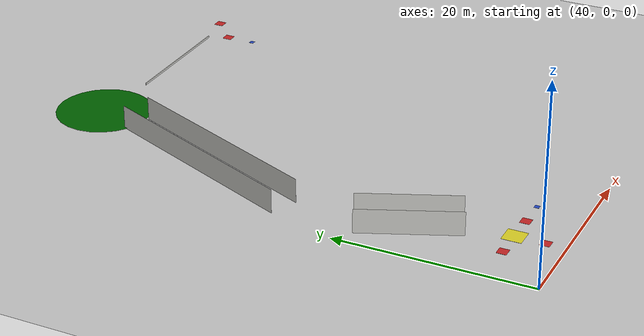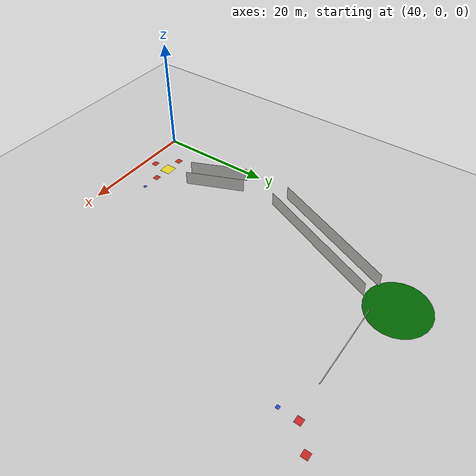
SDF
<sdf version="1.6">
 <world name="default">
  <model name="ground_plane">
   <static>1</static>
   <link name="link">
    <collision name="collision">
     <geometry><plane><normal>0 0 1</normal><size>100 100</size></plane></geometry>
     <surface><friction><ode><mu>100</mu><mu2>50</mu2></ode></friction></surface>
    </collision>
    <visual name="visual">
     <cast_shadows>0</cast_shadows>
     <geometry><plane><normal>0 0 1</normal><size>100 100</size></plane></geometry>
     <material>
      <script><uri>file://media/materials/scripts/gazebo.material</uri><name>Gazebo/Grey</name></script>
     </material>
    </visual>
   </link>
  </model>
  <model name="35">
   <pose>43.75 13.875 0 0 -0 0</pose>
   <link name="Wall_2">
    <collision name="Wall_2_Collision">
     <geometry><box><size>10.2688 0.001 2.5</size></box></geometry>
     <pose>0 0 1.25 0 -0 0</pose>
    </collision>
    <visual name="Wall_2_Visual">
     <pose>0 0 1.25 0 -0 0</pose>
     <geometry><box><size>10.2688 0.001 2.5</size></box></geometry>
     <material>
      <script><uri>file://media/materials/scripts/gazebo.material</uri><name>Gazebo/CeilingTiled</name></script>
      <ambient>0.435294 0.796078 0.67451 1</ambient>
     </material>
    </visual>
    <pose>0 0 0 0 -0 1.9706</pose>
   </link>
   <static>1</static>
  </model>
  <model name="356_clone">
   <pose>46.275 37.625 0 0 -0 0</pose>
   <link name="Wall_14">
    <collision name="Wall_14_Collision">
     <geometry><box><size>23.2878 0.001 2.5</size></box></geometry>
     <pose>0 0 1.25 0 -0 0</pose>
    </collision>
    <visual name="Wall_14_Visual">
     <pose>0 0 1.25 0 -0 0</pose>
     <geometry><box><size>23.2878 0.001 2.5</size></box></geometry>
     <material>
      <script><uri>file://media/materials/scripts/gazebo.material</uri><name>Gazebo/CeilingTiled</name></script>
      <ambient>0.435294 0.796078 0.67451 1</ambient>
     </material>
    </visual>
    <pose>0 0 0 0 -0 1.17162</pose>
   </link>
   <static>1</static>
  </model>
  <model name="356_clone_clone">
   <pose>49.0391 36.459 0 0 -0 0</pose>
   <link name="Wall_14">
    <collision name="Wall_14_Collision">
     <geometry><box><size>23.2878 0.001 2.5</size></box></geometry>
     <pose>0 0 1.25 0 -0 0</pose>
    </collision>
    <visual name="Wall_14_Visual">
     <pose>0 0 1.25 0 -0 0</pose>
     <geometry><box><size>23.2878 0.001 2.5</size></box></geometry>
     <material>
      <script><uri>file://media/materials/scripts/gazebo.material</uri><name>Gazebo/CeilingTiled</name></script>
      <ambient>0.435294 0.796078 0.67451 1</ambient>
     </material>
    </visual>
    <pose>0 0 0 0 -0 1.17162</pose>
   </link>
   <static>1</static>
  </model>
  <model name="35_clone_0">
   <pose>46.5134 15.0427 0 0 -0 0</pose>
   <link name="Wall_2">
    <collision name="Wall_2_Collision">
     <geometry><box><size>10.2688 0.001 2.5</size></box></geometry>
     <pose>0 0 1.25 0 -0 0</pose>
    </collision>
    <visual name="Wall_2_Visual">
     <pose>0 0 1.25 0 -0 0</pose>
     <geometry><box><size>10.2688 0.001 2.5</size></box></geometry>
     <material>
      <script><uri>file://media/materials/scripts/gazebo.material</uri><name>Gazebo/CeilingTiled</name></script>
      <ambient>0.435294 0.796078 0.67451 1</ambient>
     </material>
    </visual>
    <pose>0 0 0 0 -0 1.9706</pose>
   </link>
   <static>1</static>
  </model>
  <model name="my_objectT4">
   <link name="my_box">
    <inertial>
     <mass>1</mass>
     <inertia><ixx>1</ixx><ixy>0</ixy><ixz>0</ixz><iyy>100</iyy><iyz>0</iyz><izz>1</izz></inertia>
    </inertial>
    <collision name="my_box_collision"><geometry><box><size>2 2 0.01</size></box></geometry></collision>
    <visual name="my_box_visual">
     <geometry><box><size>2 2 0.01</size></box></geometry>
     <material>
      <script><name>Gazebo/Yellow</name><uri>file://media/materials/scripts/gazebo.material</uri></script>
     </material>
    </visual>
   </link>
   <pose>47.5006 4.99874 0.115002 5e-06 1e-06 -0.000625</pose>
  </model>
  <model name="my_objecteg2w1">
   <link name="my_box">
    <inertial>
     <mass>1</mass>
     <inertia><ixx>1</ixx><ixy>0</ixy><ixz>0</ixz><iyy>100</iyy><iyz>0</iyz><izz>1</izz></inertia>
    </inertial>
    <collision name="my_box_collision"><geometry><box><size>1 1 0.01</size></box></geometry></collision>
    <visual name="my_box_visual">
     <geometry><box><size>1 1 0.01</size></box></geometry>
     <material>
      <script><name>Gazebo/Red</name><uri>file://media/materials/scripts/gazebo.material</uri></script>
     </material>
    </visual>
   </link>
   <pose>78 52.2 0.104995 0 -0 0</pose>
  </model>
  <model name="my_objecteg2w3">
   <link name="my_box">
    <inertial>
     <mass>1</mass>
     <inertia><ixx>1</ixx><ixy>0</ixy><ixz>0</ixz><iyy>100</iyy><iyz>0</iyz><izz>1</izz></inertia>
    </inertial>
    <collision name="my_box_collision"><geometry><box><size>1 1 0.01</size></box></geometry></collision>
    <visual name="my_box_visual">
     <geometry><box><size>1 1 0.01</size></box></geometry>
     <material>
      <script><name>Gazebo/Red</name><uri>file://media/materials/scripts/gazebo.material</uri></script>
     </material>
    </visual>
   </link>
   <pose>75.0018 49.4965 0.114932 0 -1e-06 0.000487</pose>
  </model>
  <model name="my_objecteg3w1">
   <link name="my_box">
    <inertial>
     <mass>1</mass>
     <inertia><ixx>1</ixx><ixy>0</ixy><ixz>0</ixz><iyy>100</iyy><iyz>0</iyz><izz>1</izz></inertia>
    </inertial>
    <collision name="my_box_collision"><geometry><box><size>1 1 0.01</size></box></geometry></collision>
    <visual name="my_box_visual">
     <geometry><box><size>1 1 0.01</size></box></geometry>
     <material>
      <script><name>Gazebo/Red</name><uri>file://media/materials/scripts/gazebo.material</uri></script>
     </material>
    </visual>
   </link>
   <pose>44.5 5 0.104995 0 -0 0</pose>
  </model>
  <model name="my_objecteg3w2">
   <link name="my_box">
    <inertial>
     <mass>1</mass>
     <inertia><ixx>1</ixx><ixy>0</ixy><ixz>0</ixz><iyy>100</iyy><iyz>0</iyz><izz>1</izz></inertia>
    </inertial>
    <collision name="my_box_collision"><geometry><box><size>1 1 0.01</size></box></geometry></collision>
    <visual name="my_box_visual">
     <geometry><box><size>1 1 0.01</size></box></geometry>
     <material>
      <script><name>Gazebo/Red</name><uri>file://media/materials/scripts/gazebo.material</uri></script>
     </material>
    </visual>
   </link>
   <pose>50.5006 4.99668 0.114994 -3.3e-05 1e-06 -0.000393</pose>
  </model>
  <model name="my_objecteg3w3">
   <link name="my_box">
    <inertial>
     <mass>1</mass>
     <inertia><ixx>1</ixx><ixy>0</ixy><ixz>0</ixz><iyy>100</iyy><iyz>0</iyz><izz>1</izz></inertia>
    </inertial>
    <collision name="my_box_collision"><geometry><box><size>1 1 0.01</size></box></geometry></collision>
    <visual name="my_box_visual">
     <geometry><box><size>1 1 0.01</size></box></geometry>
     <material>
      <script><name>Gazebo/Red</name><uri>file://media/materials/scripts/gazebo.material</uri></script>
     </material>
    </visual>
   </link>
   <pose>47.5 2 0.104995 0 -0 0</pose>
  </model>
  <model name="my_objectg1w1">
   <link name="my_box">
    <inertial>
     <mass>1</mass>
     <inertia><ixx>1</ixx><ixy>0</ixy><ixz>0</ixz><iyy>100</iyy><iyz>0</iyz><izz>1</izz></inertia>
    </inertial>
    <collision name="my_box_collision"><geometry><box><size>0.5 0.5 0.01</size></box></geometry></collision>
    <visual name="my_box_visual">
     <geometry><box><size>0.5 0.5 0.01</size></box></geometry>
     <material>
      <script><name>Gazebo/Blue</name><uri>file://media/materials/scripts/gazebo.material</uri></script>
     </material>
    </visual>
   </link>
   <pose>47.4975 5.00369 0.105002 4e-06 2e-06 -0.001136</pose>
  </model>
  <model name="my_objectg1w2">
   <link name="my_box">
    <inertial>
     <mass>1</mass>
     <inertia><ixx>1</ixx><ixy>0</ixy><ixz>0</ixz><iyy>100</iyy><iyz>0</iyz><izz>1</izz></inertia>
    </inertial>
    <collision name="my_box_collision"><geometry><box><size>0.5 0.5 0.01</size></box></geometry></collision>
    <visual name="my_box_visual">
     <geometry><box><size>0.5 0.5 0.01</size></box></geometry>
     <material>
      <script><name>Gazebo/Blue</name><uri>file://media/materials/scripts/gazebo.material</uri></script>
     </material>
    </visual>
   </link>
   <pose>50.4978 5.00195 0.104999 -6e-06 1e-06 0.000901</pose>
  </model>
  <model name="my_objectg1w3">
   <link name="my_box">
    <inertial>
     <mass>1</mass>
     <inertia><ixx>1</ixx><ixy>0</ixy><ixz>0</ixz><iyy>100</iyy><iyz>0</iyz><izz>1</izz></inertia>
    </inertial>
    <collision name="my_box_collision"><geometry><box><size>0.5 0.5 0.01</size></box></geometry></collision>
    <visual name="my_box_visual">
     <geometry><box><size>0.5 0.5 0.01</size></box></geometry>
     <material>
      <script><name>Gazebo/Blue</name><uri>file://media/materials/scripts/gazebo.material</uri></script>
     </material>
    </visual>
   </link>
   <pose>53.4974 5.00392 0.104967 3e-06 1e-06 -0.000158</pose>
  </model>
  <model name="my_objectg5w2">
   <link name="my_box">
    <inertial>
     <mass>1</mass>
     <inertia><ixx>1</ixx><ixy>0</ixy><ixz>0</ixz><iyy>100</iyy><iyz>0</iyz><izz>1</izz></inertia>
    </inertial>
    <collision name="my_box_collision"><geometry><box><size>0.5 0.5 0.01</size></box></geometry></collision>
    <visual name="my_box_visual">
     <geometry><box><size>0.5 0.5 0.01</size></box></geometry>
     <material>
      <script><name>Gazebo/Blue</name><uri>file://media/materials/scripts/gazebo.material</uri></script>
     </material>
    </visual>
   </link>
   <pose>74.9927 49.5084 0.104932 0 0 -0.000774</pose>
  </model>
  <model name="my_objectg5w3">
   <link name="my_box">
    <inertial>
     <mass>1</mass>
     <inertia><ixx>1</ixx><ixy>0</ixy><ixz>0</ixz><iyy>100</iyy><iyz>0</iyz><izz>1</izz></inertia>
    </inertial>
    <collision name="my_box_collision"><geometry><box><size>0.5 0.5 0.01</size></box></geometry></collision>
    <visual name="my_box_visual">
     <geometry><box><size>0.5 0.5 0.01</size></box></geometry>
     <material>
      <script><name>Gazebo/Blue</name><uri>file://media/materials/scripts/gazebo.material</uri></script>
     </material>
    </visual>
   </link>
   <pose>74.9936 46.5106 0.104966 2e-06 1e-06 -0.000376</pose>
  </model>
  <model name="unit_cylinder_0_3_clone">
   <link name="link">
    <inertial>
     <mass>1</mass>
     <inertia><ixx>0.145833</ixx><ixy>0</ixy><ixz>0</ixz><iyy>0.145833</iyy><iyz>0</iyz><izz>0.125</izz></inertia>
    </inertial>
    <gravity>0</gravity>
    <visual name="visual">
     <geometry><cylinder><radius>5</radius><length>0.01</length></cylinder></geometry>
     <material>
      <script><name>Gazebo/Grey</name><uri>file://media/materials/scripts/gazebo.material</uri></script>
      <ambient>0 0.4 0 0</ambient>
      <diffuse>0 0.4 0 0</diffuse>
      <specular>0 0.41 0 0</specular>
      <emissive>0 0.4 0 0</emissive>
      <shader type="vertex"><normal_map>__default__</normal_map></shader>
     </material>
    </visual>
   </link>
   <static>0</static>
   <pose>53.1292 52.2479 0.1 0 -0 0</pose>
  </model>
  <model name="358_clone_clone_0_0">
   <link name="Wall_18">
    <inertial>
     <mass>1</mass>
     <inertia><ixx>1</ixx><ixy>0</ixy><ixz>0</ixz><iyy>1</iyy><iyz>0</iyz><izz>1</izz></inertia>
    </inertial>
    <gravity>0</gravity>
    <visual name="Wall_18_Visual">
     <pose>0 0 2 0 -0 0</pose>
     <geometry><box><size>13.45 0.1 0.2</size></box></geometry>
     <material>
      <script><uri>file://media/materials/scripts/gazebo.material</uri><name>Gazebo/CeilingTiled</name></script>
      <ambient>0.435 0.796 0.675 1</ambient>
      <diffuse>1 1 1 1</diffuse>
      <specular>0 0 0 1</specular>
      <emissive>1 1 0 1</emissive>
      <shader type="vertex"><normal_map>__default__</normal_map></shader>
     </material>
    </visual>
    <collision name="Wall_18_Collision">
     <pose>0 0 1.25 0 -0 0</pose>
     <geometry><box><size>13.45 0.001 2.5</size></box></geometry>
     <surface>
      <friction>
       <ode><mu>1</mu><mu2>1</mu2><fdir1>0 0 0</fdir1><slip1>0</slip1><slip2>0</slip2></ode>
       <torsional>
        <coefficient>1</coefficient>
        <patch_radius>0</patch_radius>
        <surface_radius>0</surface_radius>
        <use_patch_radius>1</use_patch_radius>
        <ode><slip>0</slip></ode>
       </torsional>
      </friction>
      <bounce><restitution_coefficient>0</restitution_coefficient><threshold>1e+06</threshold></bounce>
      <contact>
       <collide_without_contact>0</collide_without_contact>
       <collide_without_contact_bitmask>1</collide_without_contact_bitmask>
       <collide_bitmask>1</collide_bitmask>
       <ode>
        <soft_cfm>0</soft_cfm>
        <soft_erp>0.2</soft_erp>
        <kp>1e+13</kp>
        <kd>1</kd>
        <max_vel>0.01</max_vel>
        <min_depth>0</min_depth>
       </ode>
       <bullet>
        <split_impulse>1</split_impulse>
        <split_impulse_penetration_threshold>-0.01</split_impulse_penetration_threshold>
        <soft_cfm>0</soft_cfm>
        <soft_erp>0.2</soft_erp>
        <kp>1e+13</kp>
        <kd>1</kd>
       </bullet>
      </contact>
     </surface>
    </collision>
   </link>
   <static>1</static>
   <pose>63.775 49.5 0 0 -0 0</pose>
  </model>
 </world>
</sdf>
